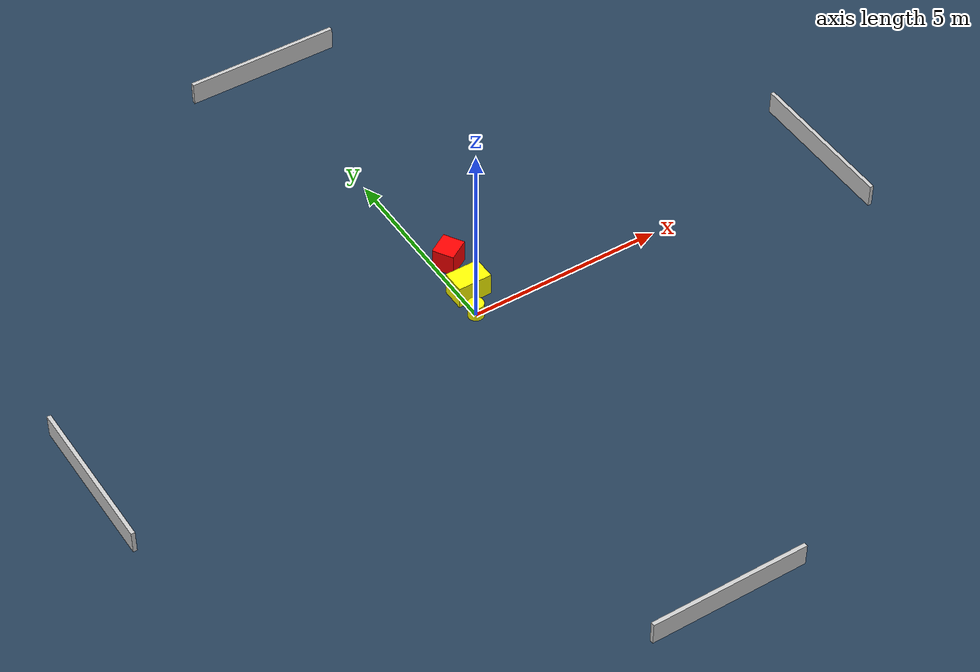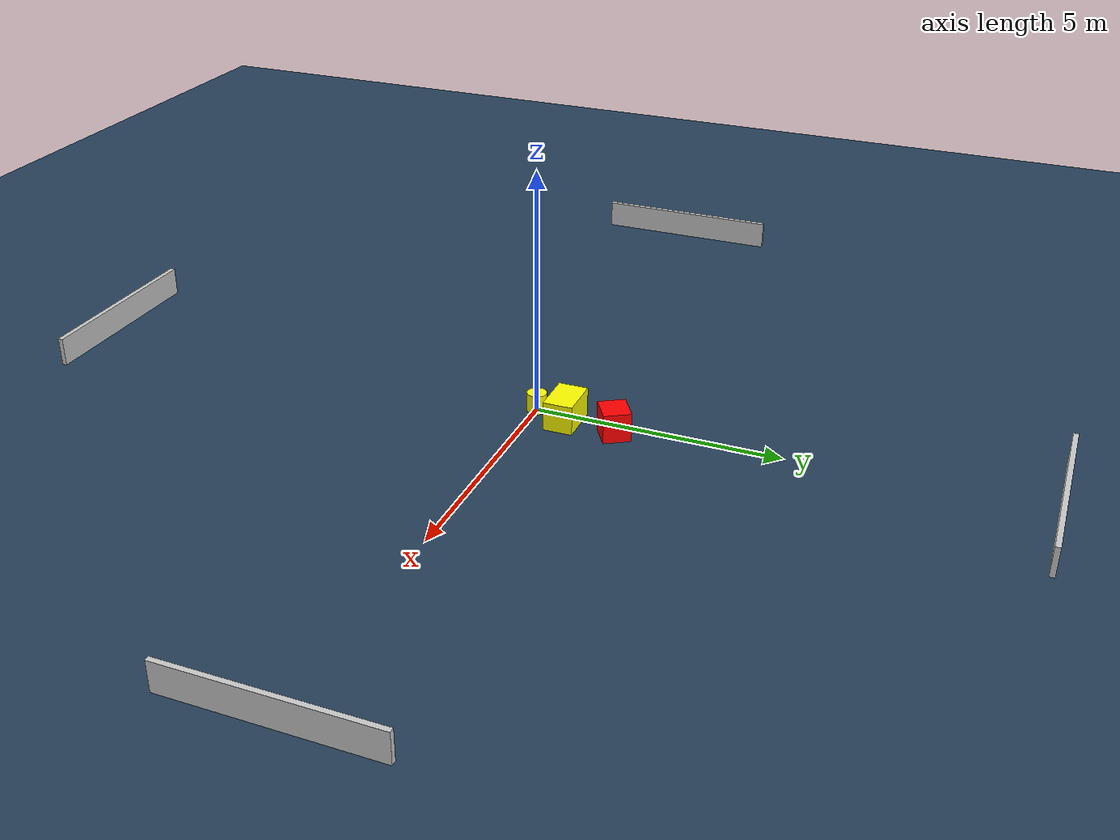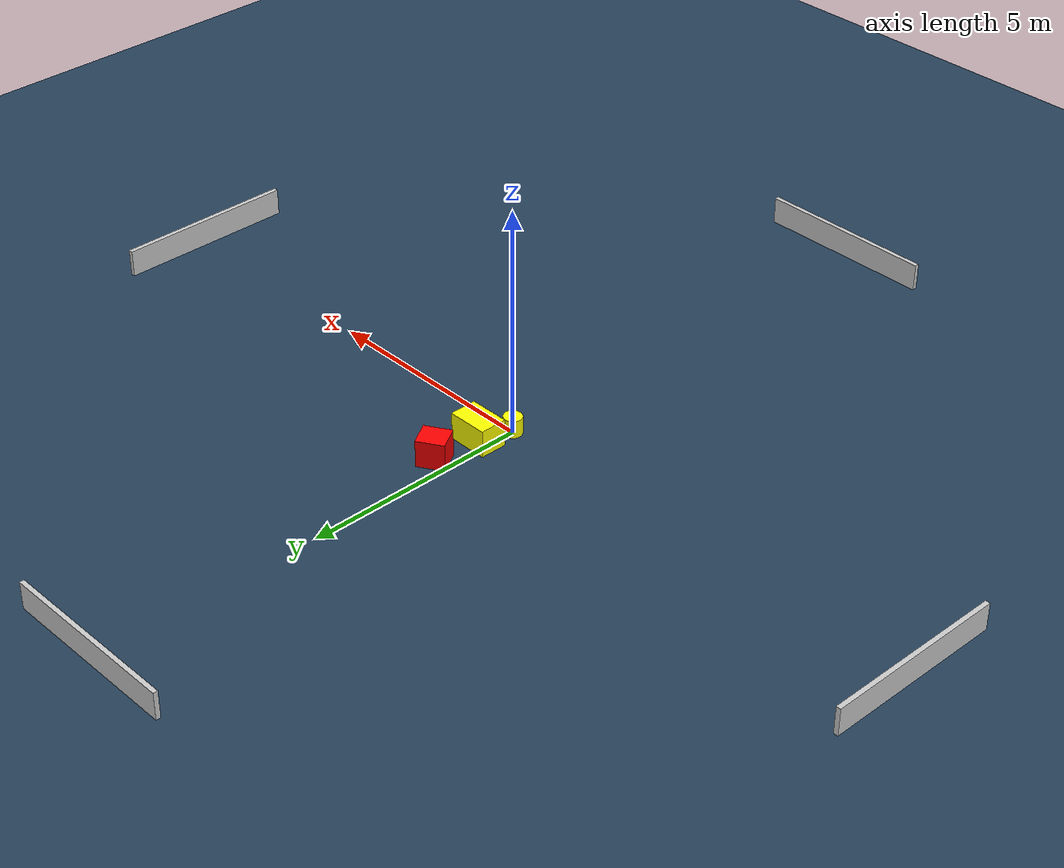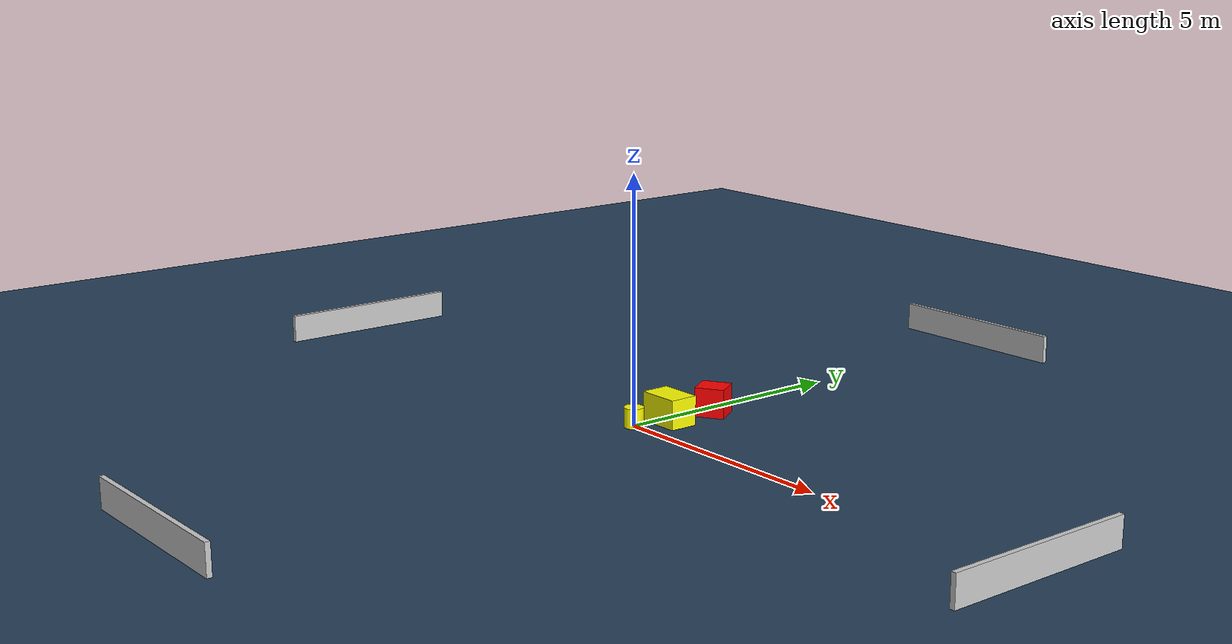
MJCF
<?xml version="1.0" ?>
<mujoco model="generated_environment">
  <option timestep="0.01" integrator="RK4" cone="elliptic"/>
  <default>
    <geom density="1"/>
  </default>
  <asset>
    <texture builtin="gradient" height="3072" name="skybox" rgb1="0.3 0.5 0.7" rgb2="0 0 0" type="skybox" width="512"/>
    <texture builtin="checker" height="300" name="groundplane" rgb1="0.2 0.3 0.4" rgb2="0.1 0.2 0.3" type="2d" width="300"/>
    <material name="groundplane" reflectance="0.2" texrepeat="5 5" texture="groundplane"/>
  </asset>
  <worldbody>
    <light dir="0 0 -1" directional="true" pos="0 0 1.5"/>
    <geom condim="3" friction="0.5 0.005 0.001" material="groundplane" name="floor" pos="0 0 0" size="0 0 0.05" type="plane"/>
    <body name="walls">
      <geom name="wall_1" condim="4" pos="-10.0 0.0 0.3" rgba="0.800000011920929 0.800000011920929 0.800000011920929 1.0" size="0.05 2.0 0.3" type="box"/>
      <geom name="wall_2" condim="4" pos="10.0 0.0 0.3" rgba="0.800000011920929 0.800000011920929 0.800000011920929 1.0" size="0.05 2.0 0.3" type="box"/>
      <geom name="wall_3" condim="4" pos="0.0 -10.0 0.3" rgba="0.800000011920929 0.800000011920929 0.800000011920929 1.0" size="2.0 0.05 0.3" type="box"/>
      <geom name="wall_4" condim="4" pos="0.0 10.0 0.3" rgba="0.800000011920929 0.800000011920929 0.800000011920929 1.0" size="2.0 0.05 0.3" type="box"/>
    </body>
    <body name="robot">
      <joint name="joint_x" type="slide" pos="0 0 0" axis="1 0 0"/>
      <joint name="joint_y" type="slide" pos="0 0 0" axis="0 1 0"/>
      <geom name="robot" type="cylinder" pos="0.0 0.0 0.2" size="0.2 0.2 0.0" mass="5.0" friction="1.0 0.005 0.0001" condim="4" rgba="1.0 1.0 0.0 1.0"/>
    </body>
    <body name="obstacle_1_movable">
      <geom name="obstacle_1_movable" condim="4" pos="0.24028598026660225 0.7032656641859607 0.3" euler="0 0 270.28632807288653" friction="0.0 0.005 0.001" rgba="1.0 1.0 0.0 1.0" size="0.29876350864211376 0.4412919621112544 0.3" type="box" mass="0.1"/>
      <joint type="free"/>
    </body>
    <body name="obstacle_2_static">
      <geom name="obstacle_2_static" condim="4" pos="0.34791127949185807 1.7530567238991108 0.3" euler="0 0 301.5445418745318" friction="0.0 0.005 0.001" rgba="1.0 0.0 0.0 1.0" size="0.27756441175517255 0.30224373229559576 0.3" type="box"/>
    </body>
  </worldbody>
  <actuator>
    <motor name="actuator_x" joint="joint_x" gear="1" ctrlrange="-1 1"/>
    <motor name="actuator_y" joint="joint_y" gear="1" ctrlrange="-1 1"/>
  </actuator>
</mujoco>
